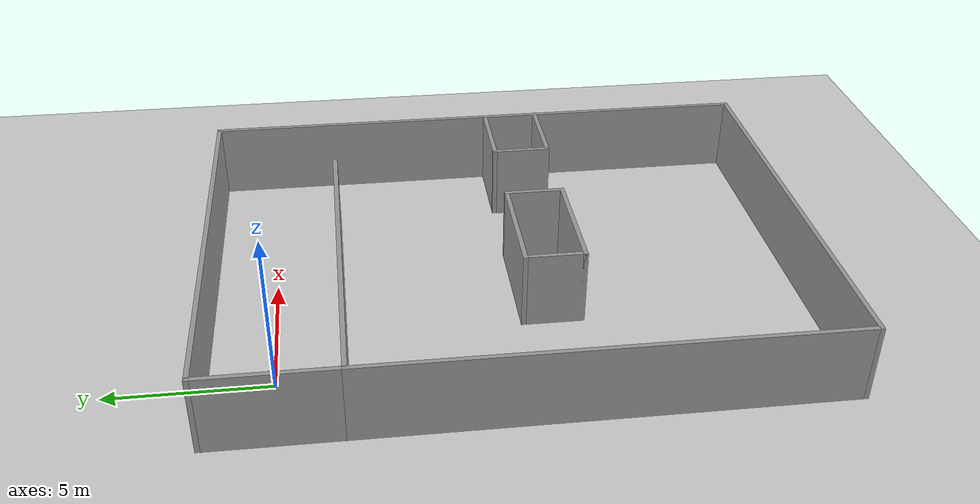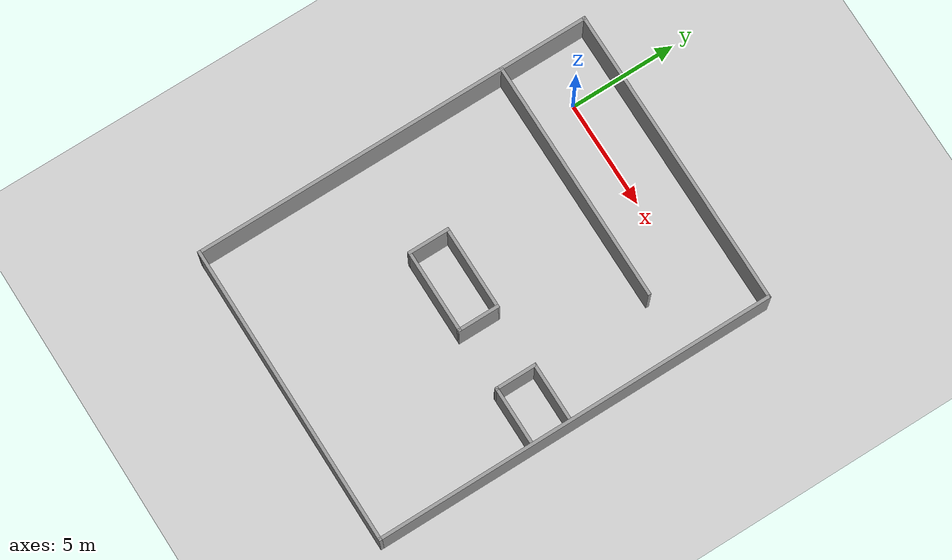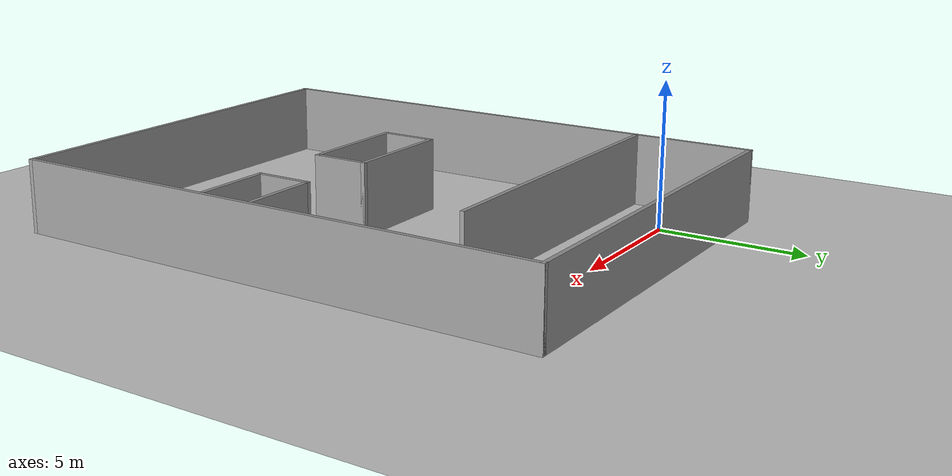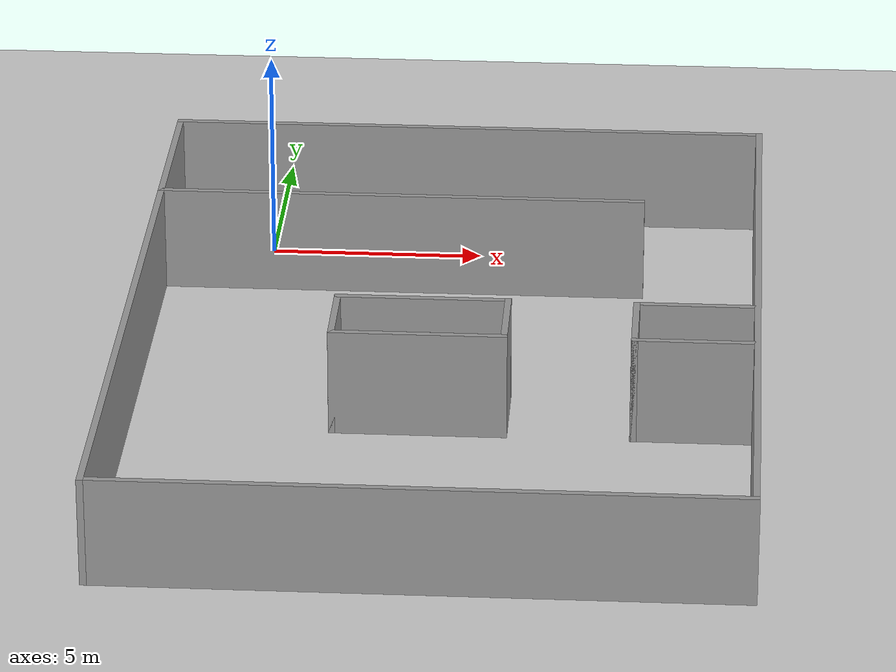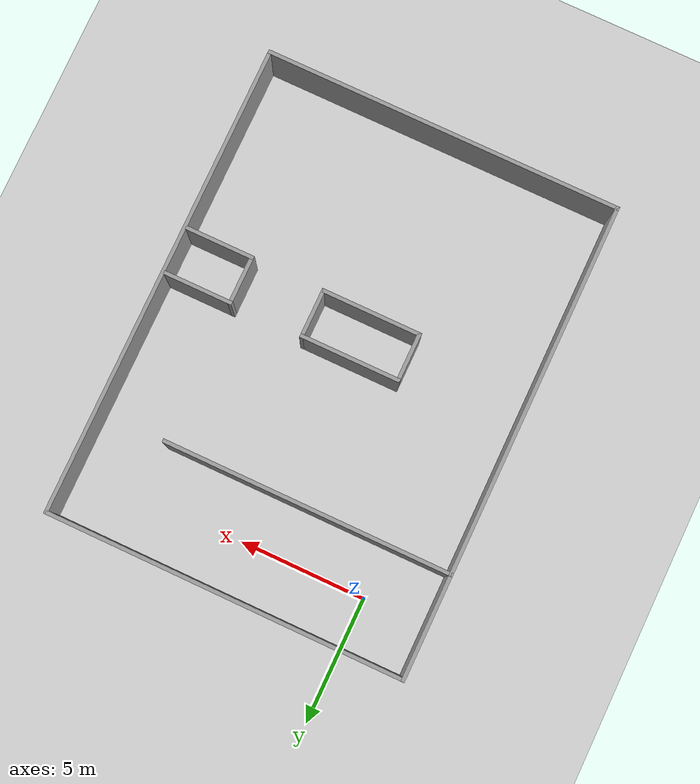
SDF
<sdf version="1.7">
 <world name="default">
  <plugin name="gazebo_ros_state" filename="libgazebo_ros_state.so">
   <ros><namespace>/gazebo</namespace></ros>
   <update_rate>1.0</update_rate>
  </plugin>
  <light name="sun" type="directional">
   <pose>0 0 10 0 -0 0</pose>
   <diffuse>0.8 0.8 0.8 1</diffuse>
   <specular>0.2 0.2 0.2 1</specular>
   <attenuation>
    <range>1000</range>
    <constant>0.9</constant>
    <linear>0.01</linear>
    <quadratic>0.001</quadratic>
   </attenuation>
   <direction>-0.5 0.1 -0.9</direction>
   <spot><inner_angle>0</inner_angle><outer_angle>0</outer_angle><falloff>0</falloff></spot>
  </light>
  <model name="ground_plane">
   <static>1</static>
   <link name="link">
    <collision name="collision">
     <geometry><plane><normal>0 0 1</normal><size>100 100</size></plane></geometry>
     <surface>
      <contact><collide_bitmask>65535</collide_bitmask></contact>
      <friction><ode><mu>100</mu><mu2>50</mu2></ode></friction>
     </surface>
    </collision>
    <visual name="visual">
     <cast_shadows>0</cast_shadows>
     <geometry><plane><normal>0 0 1</normal><size>100 100</size></plane></geometry>
     <material>
      <script><uri>file://media/materials/scripts/gazebo.material</uri><name>Gazebo/Grey</name></script>
     </material>
    </visual>
   </link>
  </model>
  <gravity>0 0 -9.8</gravity>
  <magnetic_field>6e-06 2.3e-05 -4.2e-05</magnetic_field>
  <atmosphere type="adiabatic"/>
  <physics type="ode">
   <max_step_size>0.001</max_step_size>
   <real_time_factor>1</real_time_factor>
   <real_time_update_rate>1000</real_time_update_rate>
  </physics>
  <scene><ambient>0.4 0.4 0.4 1</ambient><background>0.7 0.7 0.7 1</background><shadows>1</shadows></scene>
  <audio><device>default</device></audio>
  <spherical_coordinates>
   <surface_model>EARTH_WGS84</surface_model>
   <latitude_deg>0</latitude_deg>
   <longitude_deg>0</longitude_deg>
   <elevation>0</elevation>
   <heading_deg>0</heading_deg>
  </spherical_coordinates>
  <model name="social_int">
   <pose>4.59641 -7.39109 0 0 -0 0</pose>
   <link name="Wall_23">
    <collision name="Wall_23_Collision">
     <geometry><box><size>4.25 0.15 2.5</size></box></geometry>
     <pose>0 0 1.25 0 -0 0</pose>
    </collision>
    <visual name="Wall_23_Visual">
     <pose>0 0 1.25 0 -0 0</pose>
     <geometry><box><size>4.25 0.15 2.5</size></box></geometry>
     <material>
      <script><uri>file://media/materials/scripts/gazebo.material</uri><name>Gazebo/Grey</name></script>
      <ambient>1 1 1 1</ambient>
     </material>
     <meta><layer>0</layer></meta>
    </visual>
    <pose>-7.05 7.375 0 0 -0 -1.5708</pose>
   </link>
   <link name="Wall_24">
    <collision name="Wall_24_Collision">
     <geometry><box><size>11.5 0.15 2.5</size></box></geometry>
     <pose>0 0 1.25 0 -0 0</pose>
    </collision>
    <visual name="Wall_24_Visual">
     <pose>0 0 1.25 0 -0 0</pose>
     <geometry><box><size>11.5 0.15 2.5</size></box></geometry>
     <material>
      <script><uri>file://media/materials/scripts/gazebo.material</uri><name>Gazebo/Grey</name></script>
      <ambient>1 1 1 1</ambient>
     </material>
     <meta><layer>0</layer></meta>
    </visual>
    <pose>-1.375 5.325 0 0 -0 0</pose>
   </link>
   <link name="Wall_26">
    <collision name="Wall_26_Collision">
     <geometry><box><size>14.25 0.15 2.5</size></box></geometry>
     <pose>0 0 1.25 0 -0 0</pose>
    </collision>
    <visual name="Wall_26_Visual">
     <pose>0 0 1.25 0 -0 0</pose>
     <geometry><box><size>14.25 0.15 2.5</size></box></geometry>
     <material>
      <script><uri>file://media/materials/scripts/gazebo.material</uri><name>Gazebo/Grey</name></script>
      <ambient>1 1 1 1</ambient>
     </material>
     <meta><layer>0</layer></meta>
    </visual>
    <pose>0 9.425 0 0 -0 0</pose>
   </link>
   <link name="Wall_31">
    <collision name="Wall_31_Collision">
     <geometry><box><size>19 0.15 2.5</size></box></geometry>
     <pose>0 0 1.25 0 -0 0</pose>
    </collision>
    <visual name="Wall_31_Visual">
     <pose>0 0 1.25 0 -0 0</pose>
     <geometry><box><size>19 0.15 2.5</size></box></geometry>
     <material>
      <script><uri>file://media/materials/scripts/gazebo.material</uri><name>Gazebo/Grey</name></script>
      <ambient>1 1 1 1</ambient>
     </material>
     <meta><layer>0</layer></meta>
    </visual>
    <pose>7.05 -0 0 0 -0 -1.5708</pose>
   </link>
   <link name="Wall_32">
    <collision name="Wall_32_Collision">
     <geometry><box><size>14.25 0.15 2.5</size></box></geometry>
     <pose>0 0 1.25 0 -0 0</pose>
    </collision>
    <visual name="Wall_32_Visual">
     <pose>0 0 1.25 0 -0 0</pose>
     <geometry><box><size>14.25 0.15 2.5</size></box></geometry>
     <material>
      <script><uri>file://media/materials/scripts/gazebo.material</uri><name>Gazebo/Grey</name></script>
      <ambient>1 1 1 1</ambient>
     </material>
     <meta><layer>0</layer></meta>
    </visual>
    <pose>0 -9.425 0 0 -0 3.14159</pose>
   </link>
   <link name="Wall_33">
    <collision name="Wall_33_Collision">
     <geometry><box><size>14.9 0.15 2.5</size></box></geometry>
     <pose>0 0 1.25 0 -0 0</pose>
    </collision>
    <visual name="Wall_33_Visual">
     <pose>0 0 1.25 0 -0 0</pose>
     <geometry><box><size>14.9 0.15 2.5</size></box></geometry>
     <material>
      <script><uri>file://media/materials/scripts/gazebo.material</uri><name>Gazebo/Grey</name></script>
      <ambient>1 1 1 1</ambient>
     </material>
     <meta><layer>0</layer></meta>
    </visual>
    <pose>-7.05 -2.05 0 0 -0 1.5708</pose>
   </link>
   <link name="Wall_38">
    <collision name="Wall_38_Collision">
     <geometry><box><size>2.75 0.15 2.5</size></box></geometry>
     <pose>0 0 1.25 0 -0 0</pose>
    </collision>
    <visual name="Wall_38_Visual">
     <pose>0 0 1.25 0 -0 0</pose>
     <geometry><box><size>2.75 0.15 2.5</size></box></geometry>
     <material>
      <script><uri>file://media/materials/scripts/gazebo.material</uri><name>Gazebo/Grey</name></script>
      <ambient>1 1 1 1</ambient>
     </material>
     <meta><layer>0</layer></meta>
    </visual>
    <pose>5.63237 -0.254994 0 0 -0 3.14159</pose>
   </link>
   <link name="Wall_39">
    <collision name="Wall_39_Collision">
     <geometry><box><size>2 0.15 2.5</size></box></geometry>
     <pose>0 0 1.25 0 -0 0</pose>
    </collision>
    <visual name="Wall_39_Visual">
     <pose>0 0 1.25 0 -0 0</pose>
     <geometry><box><size>2 0.15 2.5</size></box></geometry>
     <material>
      <script><uri>file://media/materials/scripts/gazebo.material</uri><name>Gazebo/Grey</name></script>
      <ambient>1 1 1 1</ambient>
     </material>
     <meta><layer>0</layer></meta>
    </visual>
    <pose>4.33237 -1.17999 0 0 -0 -1.5708</pose>
   </link>
   <link name="Wall_40">
    <collision name="Wall_40_Collision">
     <geometry><box><size>2.75 0.15 2.5</size></box></geometry>
     <pose>0 0 1.25 0 -0 0</pose>
    </collision>
    <visual name="Wall_40_Visual">
     <pose>0 0 1.25 0 -0 0</pose>
     <geometry><box><size>2.75 0.15 2.5</size></box></geometry>
     <material>
      <script><uri>file://media/materials/scripts/gazebo.material</uri><name>Gazebo/Grey</name></script>
      <ambient>1 1 1 1</ambient>
     </material>
     <meta><layer>0</layer></meta>
    </visual>
    <pose>5.63237 -2.10499 0 0 -0 0</pose>
   </link>
   <link name="Wall_47">
    <collision name="Wall_47_Collision">
     <geometry><box><size>4 0.15 2.5</size></box></geometry>
     <pose>0 0 1.25 0 -0 0</pose>
    </collision>
    <visual name="Wall_47_Visual">
     <pose>0 0 1.25 0 -0 0</pose>
     <geometry><box><size>4 0.15 2.5</size></box></geometry>
     <material>
      <script><uri>file://media/materials/scripts/gazebo.material</uri><name>Gazebo/Grey</name></script>
      <ambient>1 1 1 1</ambient>
     </material>
     <meta><layer>0</layer></meta>
    </visual>
    <pose>-0.484432 -0.243104 0 0 -0 3.14159</pose>
   </link>
   <link name="Wall_48">
    <collision name="Wall_48_Collision">
     <geometry><box><size>2 0.15 2.5</size></box></geometry>
     <pose>0 0 1.25 0 -0 0</pose>
    </collision>
    <visual name="Wall_48_Visual">
     <pose>0 0 1.25 0 -0 0</pose>
     <geometry><box><size>2 0.15 2.5</size></box></geometry>
     <material>
      <script><uri>file://media/materials/scripts/gazebo.material</uri><name>Gazebo/Grey</name></script>
      <ambient>1 1 1 1</ambient>
     </material>
     <meta><layer>0</layer></meta>
    </visual>
    <pose>-2.40943 -1.1681 0 0 -0 -1.5708</pose>
   </link>
   <link name="Wall_49">
    <collision name="Wall_49_Collision">
     <geometry><box><size>4 0.15 2.5</size></box></geometry>
     <pose>0 0 1.25 0 -0 0</pose>
    </collision>
    <visual name="Wall_49_Visual">
     <pose>0 0 1.25 0 -0 0</pose>
     <geometry><box><size>4 0.15 2.5</size></box></geometry>
     <material>
      <script><uri>file://media/materials/scripts/gazebo.material</uri><name>Gazebo/Grey</name></script>
      <ambient>1 1 1 1</ambient>
     </material>
     <meta><layer>0</layer></meta>
    </visual>
    <pose>-0.484432 -2.0931 0 0 -0 0</pose>
   </link>
   <link name="Wall_50">
    <collision name="Wall_50_Collision">
     <geometry><box><size>2 0.15 2.5</size></box></geometry>
     <pose>0 0 1.25 0 -0 0</pose>
    </collision>
    <visual name="Wall_50_Visual">
     <pose>0 0 1.25 0 -0 0</pose>
     <geometry><box><size>2 0.15 2.5</size></box></geometry>
     <material>
      <script><uri>file://media/materials/scripts/gazebo.material</uri><name>Gazebo/Grey</name></script>
      <ambient>1 1 1 1</ambient>
     </material>
     <meta><layer>0</layer></meta>
    </visual>
    <pose>1.44057 -1.1681 0 0 -0 1.5708</pose>
   </link>
   <static>1</static>
  </model>
 </world>
</sdf>
